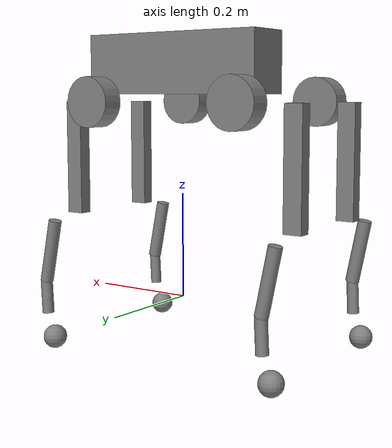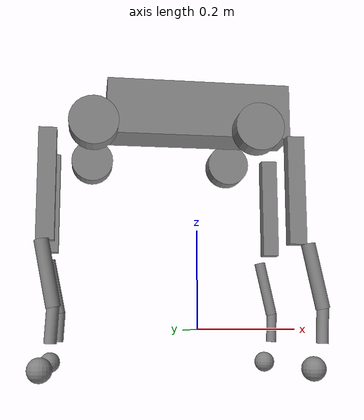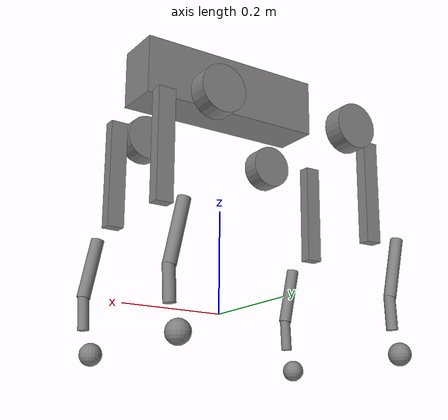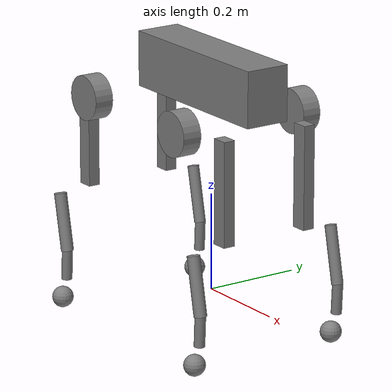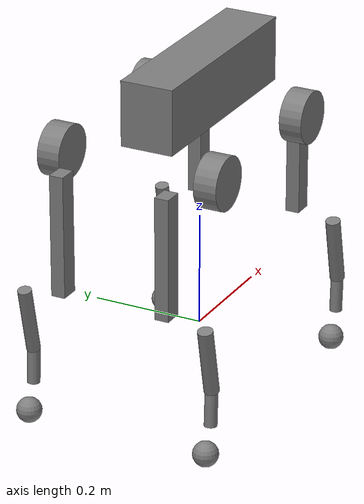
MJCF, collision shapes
<mujoco model="mybot">
  <compiler angle="radian" meshdir="assets" autolimits="true"/>

  <option cone="elliptic" impratio="100" />

  <default>
    <default class="mybot">
      <geom friction="0.6" margin="0.001" condim="1"/>
      <joint axis="0 1 0" damping="0.1" armature="0.01" frictionloss="0.2"/>
      <motor ctrlrange="-33.5 33.5"/>
      <default class="abduction">
        <joint axis="1 0 0" range="-0.48 0.48"/>
      </default>
      <default class="hip">
        <default class="front_hip">
          <joint range="-1.44 1.44"/>
        </default>
        <default class="back_hip">
          <joint range="-1.48 1.48"/>
        </default>
      </default>
      <default class="knee">
        <joint range="-2.7 -0.6"/>
        <motor ctrlrange="-33.5 33.5"/>
      </default>
      <default class="visual">
        <geom type="mesh" contype="0" conaffinity="0" group="2"/>
      </default>
      <default class="collision">
        <geom group="3"/>
        <default class="foot">
          <geom size="0.022" priority="1" condim="6" friction="0.6"/>
        </default>
      </default>
    </default>
  </default>

  <asset>
    <material name="metal" rgba=".9 .95 .95 1" />
    <material name="black" rgba="0 0 0 1" />
    <material name="white" rgba="1 1 1 1" />
    <material name="gray" rgba="0.75294 0.75294 0.75294 1" />
    <material name="transparent" rgba="1 1 1 0.01" />

    <mesh file="body.obj" />
    <mesh file="FL_hip.obj" />
    <mesh file="FL_thigh.obj" />
    <mesh file="FL_calf.obj" />
    <mesh file="FL_foot.obj" />
    <mesh file="FR_hip.obj" />
    <mesh file="FR_thigh.obj" />
    <mesh file="FR_calf.obj" />
    <mesh file="FR_foot.obj" />
    <mesh file="RL_hip.obj" />
    <mesh file="RL_thigh.obj" />
    <mesh file="RL_calf.obj" />
    <mesh file="RL_foot.obj" />
    <mesh file="RR_hip.obj" />
    <mesh file="RR_thigh.obj" />
    <mesh file="RR_calf.obj" />
    <mesh file="RR_foot.obj" />
  </asset>

  <worldbody>
    <body name="base_link" pos="0 0 0.445" childclass="mybot">
      <inertial pos="-0.075044 0.0013153 0.023062"
        mass="5.3036"
        diaginertia="0.012634 0.017259 0.017164" />
      <freejoint />
      <geom mesh="body" material="gray" class="visual" />
      <geom size="0.1881 0.04675 0.057" type="box" class="collision" />
      <site name="imu" pos="-0.02557 0 0.04232" />
      <body name="FL_hip" pos="0.0946 0.062 -0.071">
        <inertial pos="0.049109 0.0014996 -1.9828E-05"
          mass="0.62455"
          diaginertia="0.00051175 0.00080416 0.00043104" />
        <joint name="FL_hip_joint" class="abduction" />
        <geom mesh="FL_hip" material="white" class="visual" />
        <geom size="0.046 0.02" pos="0 0.08 0" quat="1 1 0 0" type="cylinder" class="collision" />
        <body name="FL_thigh" pos="0.085 0.03295 0">
          <inertial pos="0.00040284 0.05094 -0.044849"
            mass="1.107"
            diaginertia="0.0026249 0.0030336 0.00046586" />
          <joint name="FL_thigh_joint" class="front_hip" />
          <geom mesh="FL_thigh" material="white" class="visual" />
          <geom size="0.1065 0.01225 0.017" pos="0 0 -0.1065" quat="0.707107 0 0.707107 0"
            type="box" class="collision" />
          <body name="FL_calf" pos="0 0.0705 -0.22">
            <inertial pos="0.0173313220834074 -3.86262616810795E-05 -0.100135269530258"
              mass="0.292483071997453"
              diaginertia="0.000903299669438753 0.000949320326267258 6.30610325260309E-05" />
            <joint name="FL_calf_joint" class="knee" />
            <geom mesh="FL_calf" material="gray" class="visual" />
            <geom size="0.012 0.06" pos="0.008 0 -0.06" quat="0.994493 0 -0.104807 0"
              type="cylinder" class="collision" />
            <geom size="0.011 0.0325" pos="0.02 0 -0.148" quat="0.999688 0 0.0249974 0"
              type="cylinder" class="collision" />
            <geom mesh="FL_foot" material="black" class="visual" pos="0.0015191 -0.00024999 -0.22467"/>
            <geom name="FL" class="foot" pos="0.0015191 -0.00024999 -0.22467" />
            <site name="FL_touch" pos="0.0015191 -0.00024999 -0.22467" size="0.027" material="transparent"/>
            <body name="FL_foot" pos="0.0015191 -0.00024999 -0.22467"/>
          </body>
        </body>
      </body>
      <body name="FR_hip" pos="0.0946 -0.062 -0.071">
        <inertial pos="0.0503237105506868 -0.0023835007191014 -1.92627612935203E-05"
          mass="0.645332324862741"
          diaginertia="0.000516279867983271 0.000812995967320655 0.000435566921761248" />
        <joint name="FR_hip_joint" class="abduction" />
        <geom mesh="FR_hip" material="white" class="visual" />
        <geom size="0.046 0.02" pos="0 -0.08 0" quat="0.707107 0.707107 0 0" type="cylinder"
          class="collision" />
        <body name="FR_thigh" pos="0.085 -0.03295 0">
          <inertial pos="0.000368722927323942 -0.0509397168811238 -0.0448485013445288"
            mass="1.10704185501149"
            diaginertia="0.00262493871504934 0.00303362951335752 0.000465861672831916" />
          <joint name="FR_thigh_joint" class="front_hip" />
          <geom mesh="FR_thigh" material="white" class="visual" />
          <geom size="0.1065 0.01225 0.017" pos="0 0 -0.1065" quat="0.707107 0 0.707107 0"
            type="box" class="collision" />
          <body name="FR_calf" pos="0 -0.0705 -0.22">
            <inertial pos="0.0173100986135107 3.8634407188376E-05 -0.10013936313376"
              mass="0.292483071997452"
              diaginertia="0.000903102820321633 0.000949320326267247 6.32578816431396E-05" />
            <joint name="FR_calf_joint" class="knee" />
            <geom mesh="FR_calf" material="gray" class="visual" />
            <geom size="0.013 0.06" pos="0.01 0 -0.06" quat="0.995004 0 -0.0998334 0"
              type="cylinder" class="collision" />
            <geom size="0.011 0.0325" pos="0.02 0 -0.148" quat="0.999688 0 0.0249974 0"
              type="cylinder" class="collision" />
            <geom mesh="FR_foot" material="black" class="visual" pos="0.0015191 0.00025002 -0.22467"/>
            <geom name="FR" class="foot" pos="0.0015191 0.00025002 -0.22467" />
            <site name="FR_touch" pos="0.0015191 0.00025002 -0.22467" size="0.027" material="transparent"/>
            <body name="FR_foot" pos="0.0015191 0.00025002 -0.22467"/>
          </body>
        </body>
      </body>
      <body name="RL_hip" pos="-0.2146 0.062 -0.071">
        <inertial pos="-0.0509369545389707 0.00155116609107588 2.07286073817398E-05"
          mass="0.603770938189494"
          diaginertia="0.000502920983948406 0.000799637078472992 0.000426513217482837" />
        <joint name="RL_hip_joint" class="abduction" />
        <geom mesh="RL_hip" material="gray" class="visual" />
        <geom size="0.046 0.02" pos="0 0.08 0" quat="0.707107 0.707107 0 0" type="cylinder"
          class="collision" />
        <body name="RL_thigh" pos="-0.085 0.03295 0">
          <inertial pos="4.70856003376152E-05 0.0509397257670039 -0.0448500279170919"
            mass="1.10704185443719"
            diaginertia="0.00262542452560882 0.00303362951322963 0.000465375862108502" />
          <joint name="RL_thigh_joint" class="back_hip" />
          <geom mesh="RL_thigh" material="white" class="visual" />
          <geom size="0.1065 0.01225 0.017" pos="0 0 -0.1065" quat="0.707107 0 0.707107 0"
            type="box" class="collision" />
          <body name="RL_calf" pos="0 0.0705 -0.22">
            <inertial pos="0.0173313220834085 -3.8626261668756E-05 -0.100135269530252"
              mass="0.292483071997453"
              diaginertia="0.00090329966943877 0.000949320326267271 6.30610325260272E-05" />
            <joint name="RL_calf_joint" class="knee" />
            <geom mesh="RL_calf" material="gray" class="visual" />
            <geom size="0.012 0.06" pos="0.008 0 -0.06" quat="0.994493 0 -0.104807 0"
              type="cylinder" class="collision" />
            <geom size="0.011 0.0325" pos="0.02 0 -0.148" quat="0.999688 0 0.0249974 0"
              type="cylinder" class="collision" />
            <geom mesh="RL_foot" material="black" class="visual" pos="0.0015191 -0.00024998 -0.22467"/>
            <geom name="RL" class="foot" pos="0.0015191 -0.00024998 -0.22467" />
            <site name="RL_touch" pos="0.0015191 -0.00024998 -0.22467" size="0.027" material="transparent"/>
            <body name="RL_foot" pos="0.0015191 -0.00024998 -0.22467" />
          </body>
        </body>
      </body>
      <body name="RR_hip" pos="-0.2146 -0.062 -0.071">
        <inertial pos="-0.0509369545389707 -0.00155116609107588 2.07286073817398E-05"
          mass="0.603770938189494"
          diaginertia="0.000502920983948406 0.000799637078472992 0.000426513217482837" />
        <joint name="RR_hip_joint" class="abduction" />
        <geom mesh="RR_hip" material="white" class="visual"
          quat="2.14617e-09 4.63268e-05 4.63268e-05 -1" />
        <geom size="0.046 0.02" pos="0 -0.08 0" quat="0.707107 0.707107 0 0" type="cylinder"
          class="collision" />
        <body name="RR_thigh" pos="-0.085 -0.03295 0">
          <inertial pos="1.28880250909735E-05 -0.0509397169038918 -0.0448500226018352"
            mass="1.10704185429829"
            diaginertia="0.00262542535834981 0.00303362951314973 0.000465375029340171" />
          <joint name="RR_thigh_joint" class="back_hip" />
          <geom mesh="RR_thigh" material="gray" class="visual" />
          <geom size="0.1065 0.01225 0.017" pos="0 0 -0.1065" quat="0.707107 0 0.707107 0"
            type="box" class="collision" />
          <body name="RR_calf" pos="0 -0.0705 -0.22">
            <inertial pos="0.0173100986135103 3.86344071778844E-05 -0.100139363133758"
              mass="0.292483071997453"
              diaginertia="0.00090310282032164 0.000949320326267306 6.32578816431918E-05" />
            <joint name="RR_calf_joint" class="knee" />
            <geom mesh="RR_calf" material="gray" class="visual" />
            <geom size="0.013 0.06" pos="0.01 0 -0.06" quat="0.995004 0 -0.0998334 0"
              type="cylinder" class="collision" />
            <geom size="0.011 0.0325" pos="0.02 0 -0.148" quat="0.999688 0 0.0249974 0"
              type="cylinder" class="collision" />
            <geom mesh="RR_foot" material="black" class="visual" pos="0.0015191 0.00025002 -0.22467"/>
            <geom name="RR" class="foot" pos="0.0015191 0.00025002 -0.22467" />
            <site name="RR_touch" pos="0.0015191 0.00025002 -0.22467" size="0.027" material="transparent"/>
            <body name="RR_foot" pos="0.0015191 0.00025002 -0.22467"/>
          </body>
        </body>
      </body>
    </body>
  </worldbody>

  <actuator>
    <motor class="abduction" name="FR_hip" joint="FR_hip_joint" />
    <motor class="hip" name="FR_thigh" joint="FR_thigh_joint" />
    <motor class="knee" name="FR_calf" joint="FR_calf_joint" />
    <motor class="abduction" name="FL_hip" joint="FL_hip_joint" />
    <motor class="hip" name="FL_thigh" joint="FL_thigh_joint" />
    <motor class="knee" name="FL_calf" joint="FL_calf_joint" />
    <motor class="abduction" name="RR_hip" joint="RR_hip_joint" />
    <motor class="hip" name="RR_thigh" joint="RR_thigh_joint" />
    <motor class="knee" name="RR_calf" joint="RR_calf_joint" />
    <motor class="abduction" name="RL_hip" joint="RL_hip_joint" />
    <motor class="hip" name="RL_thigh" joint="RL_thigh_joint" />
    <motor class="knee" name="RL_calf" joint="RL_calf_joint" />
  </actuator>

  <sensor>
    <jointpos name="FR_hip_pos" joint="FR_hip_joint" />
    <jointpos name="FR_thigh_pos" joint="FR_thigh_joint" />
    <jointpos name="FR_calf_pos" joint="FR_calf_joint" />
    <jointpos name="FL_hip_pos" joint="FL_hip_joint" />
    <jointpos name="FL_thigh_pos" joint="FL_thigh_joint" />
    <jointpos name="FL_calf_pos" joint="FL_calf_joint" />
    <jointpos name="RR_hip_pos" joint="RR_hip_joint" />
    <jointpos name="RR_thigh_pos" joint="RR_thigh_joint" />
    <jointpos name="RR_calf_pos" joint="RR_calf_joint" />
    <jointpos name="RL_hip_pos" joint="RL_hip_joint" />
    <jointpos name="RL_thigh_pos" joint="RL_thigh_joint" />
    <jointpos name="RL_calf_pos" joint="RL_calf_joint" />

    <jointvel name="FR_hip_vel" joint="FR_hip_joint" />
    <jointvel name="FR_thigh_vel" joint="FR_thigh_joint" />
    <jointvel name="FR_calf_vel" joint="FR_calf_joint" />
    <jointvel name="FL_hip_vel" joint="FL_hip_joint" />
    <jointvel name="FL_thigh_vel" joint="FL_thigh_joint" />
    <jointvel name="FL_calf_vel" joint="FL_calf_joint" />
    <jointvel name="RR_hip_vel" joint="RR_hip_joint" />
    <jointvel name="RR_thigh_vel" joint="RR_thigh_joint" />
    <jointvel name="RR_calf_vel" joint="RR_calf_joint" />
    <jointvel name="RL_hip_vel" joint="RL_hip_joint" />
    <jointvel name="RL_thigh_vel" joint="RL_thigh_joint" />
    <jointvel name="RL_calf_vel" joint="RL_calf_joint" />

    <jointactuatorfrc name="FR_hip_torque" joint="FR_hip_joint" noise="0.01" />
    <jointactuatorfrc name="FR_thigh_torque" joint="FR_thigh_joint" noise="0.01" />
    <jointactuatorfrc name="FR_calf_torque" joint="FR_calf_joint" noise="0.01" />
    <jointactuatorfrc name="FL_hip_torque" joint="FL_hip_joint" noise="0.01" />
    <jointactuatorfrc name="FL_thigh_torque" joint="FL_thigh_joint" noise="0.01" />
    <jointactuatorfrc name="FL_calf_torque" joint="FL_calf_joint" noise="0.01" />
    <jointactuatorfrc name="RR_hip_torque" joint="RR_hip_joint" noise="0.01" />
    <jointactuatorfrc name="RR_thigh_torque" joint="RR_thigh_joint" noise="0.01" />
    <jointactuatorfrc name="RR_calf_torque" joint="RR_calf_joint" noise="0.01" />
    <jointactuatorfrc name="RL_hip_torque" joint="RL_hip_joint" noise="0.01" />
    <jointactuatorfrc name="RL_thigh_torque" joint="RL_thigh_joint" noise="0.01" />
    <jointactuatorfrc name="RL_calf_torque" joint="RL_calf_joint" noise="0.01" />

    <framequat name="imu_quat" objtype="site" objname="imu" />
    <gyro name="imu_gyro" site="imu" />
    <accelerometer name="imu_acc" site="imu" />

    <framepos name="frame_pos" objtype="site" objname="imu" />
    <framelinvel name="frame_vel" objtype="site" objname="imu" />

    <touch name="FR_touch" site="FR_touch" />
    <touch name="FL_touch" site="FL_touch" />
    <touch name="RR_touch" site="RR_touch" />
    <touch name="RL_touch" site="RL_touch" />
  </sensor>

  <keyframe>
    <key name="home" qpos="0 0 0.1 1 0 0 0 0.20 0.80 -1.68 0.20 0.80 -1.68 0.20 0.80 -1.68 0.20 0.80 -1.68"
         ctrl="0 0 0 0 0 0 0 0 0 0 0 0" />
  </keyframe>
</mujoco>
